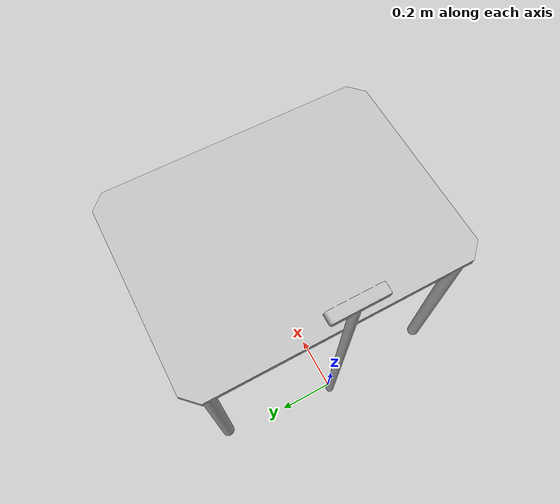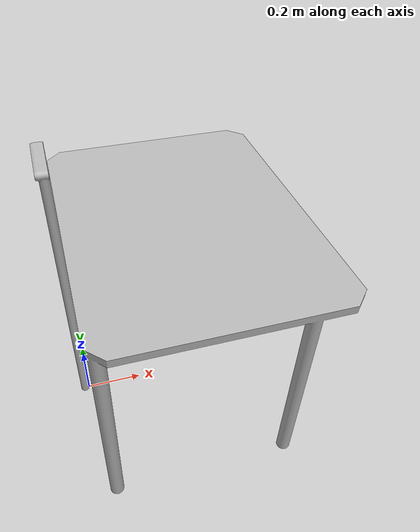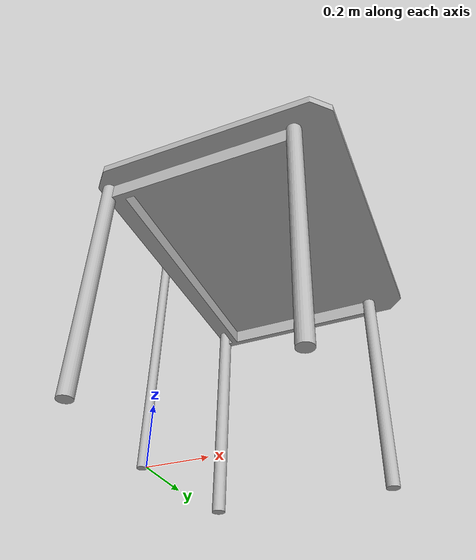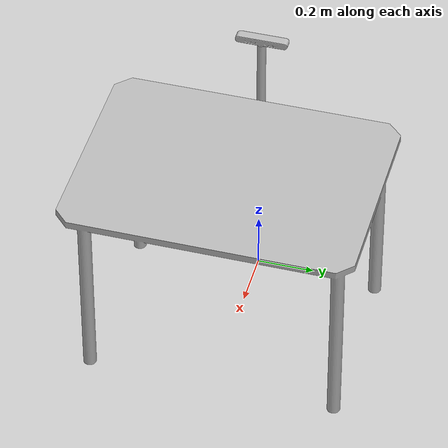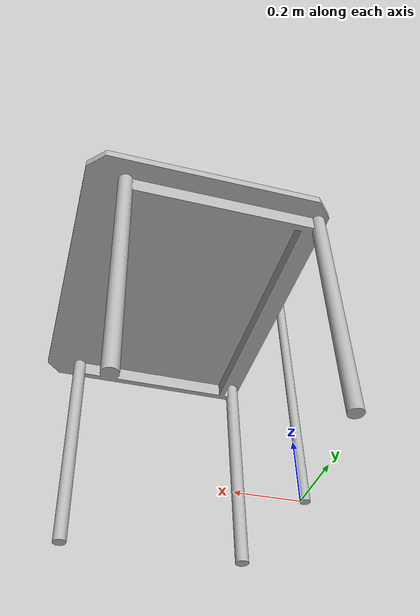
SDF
<?xml version="1.0" ?>
<sdf version="1.5">
  <model name="desk">
    <pose>0 0 0  0 0 0</pose>
    <static>true</static>
    <link name="body">
      <visual name="visual">
        <geometry>
          <mesh><uri>model://desk/desk.dae</uri></mesh>
        </geometry>
      </visual>
      <collision name="collision">
        <geometry>
          <mesh><uri>model://desk/desk.dae</uri></mesh>
        </geometry>
      </collision>
    </link>
  </model>
</sdf>
